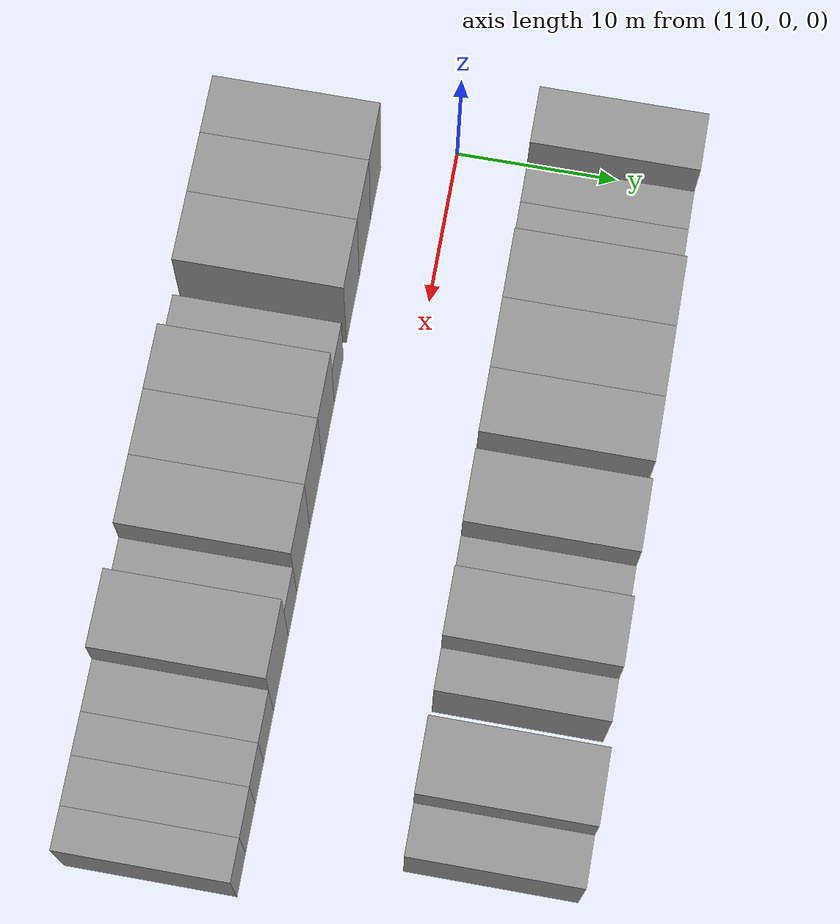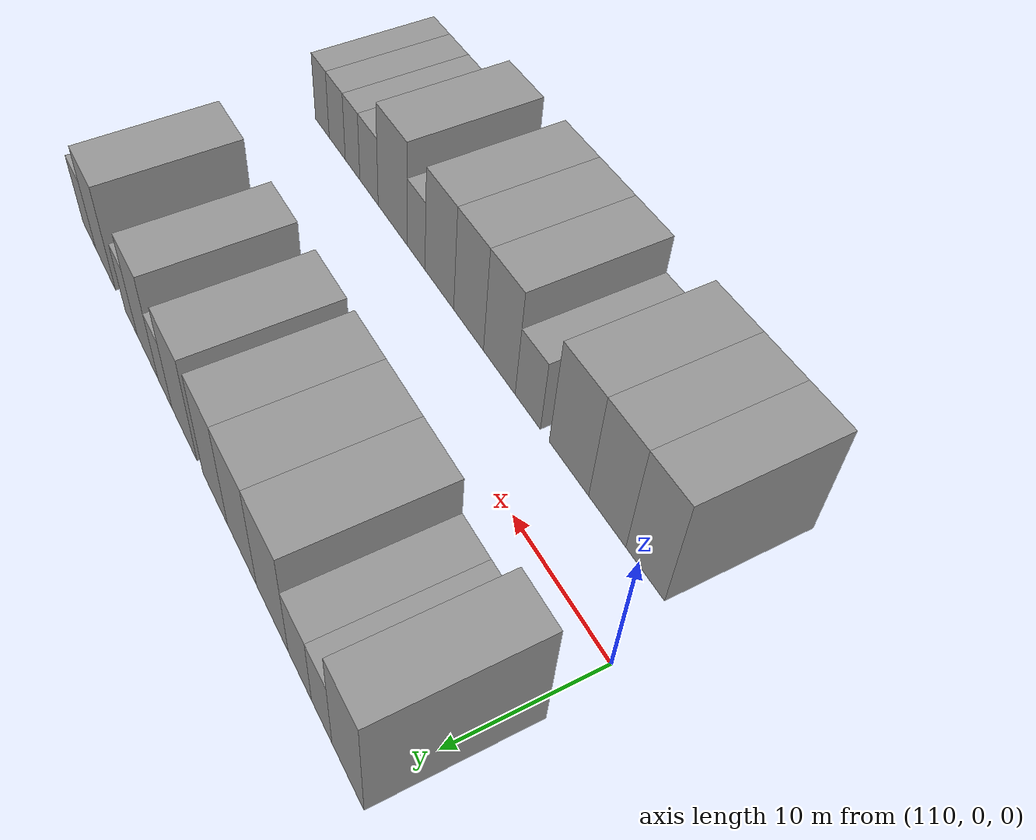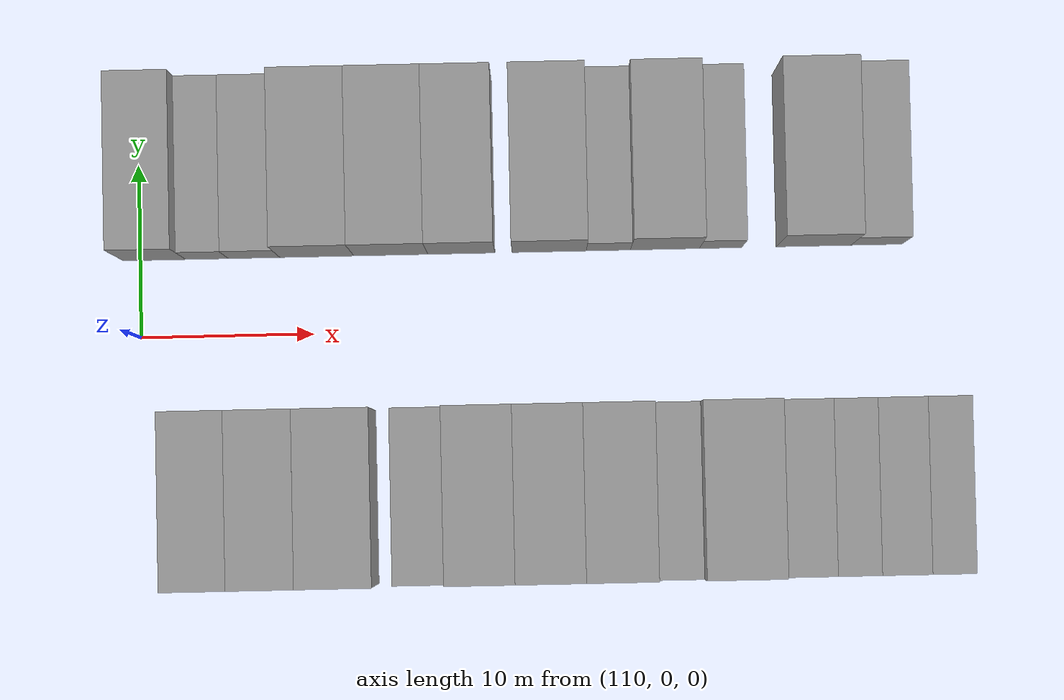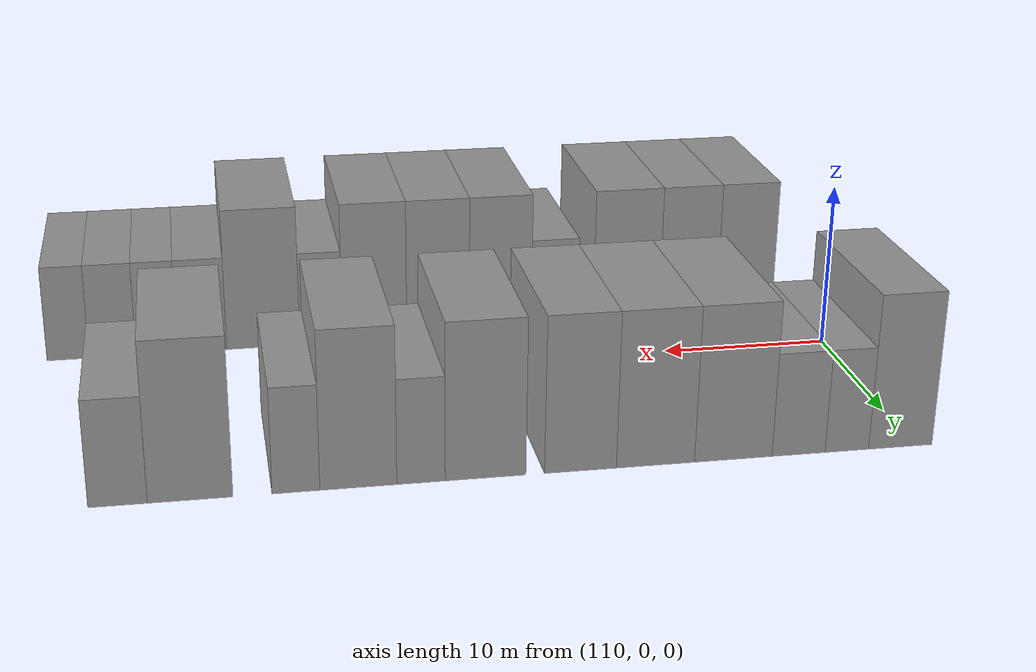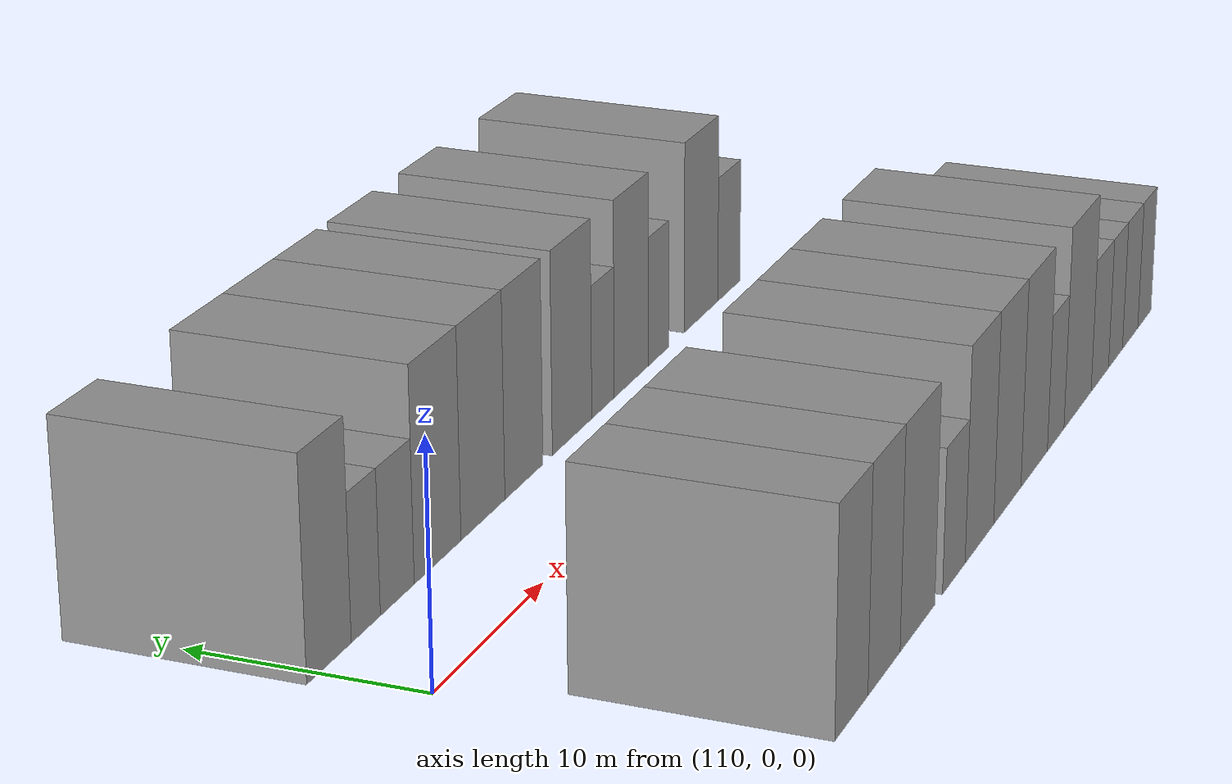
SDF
<sdf version="1.6">
 <world name="default">
  <model name="building_26">
   <static>1</static>
   <pose>110.8466 9.5000 0 0.000000 0.000000 1.570796</pose>
   <link name="link">
    <pose>0 0 4.50 0 0 0</pose>
    <collision name="collision"><geometry><box><size>10.0000 3.6311 9.0000</size></box></geometry></collision>
    <visual name="visual">
     <cast_shadows>0</cast_shadows>
     <geometry><box><size>10.0000 3.6311 9.0000</size></box></geometry>
     <material>
      <script>
       <uri>model://grey_wall/materials/scripts</uri>
       <uri>model://grey_wall/materials/textures</uri>
       <name>vrc/grey_wall</name>
      </script>
     </material>
    </visual>
   </link>
  </model>
  <model name="building_27">
   <static>1</static>
   <pose>113.8942 9.5000 0 0.000000 0.000000 1.570796</pose>
   <link name="link">
    <pose>0 0 3.00 0 0 0</pose>
    <collision name="collision"><geometry><box><size>10.0000 2.4641 6.0000</size></box></geometry></collision>
    <visual name="visual">
     <cast_shadows>0</cast_shadows>
     <geometry><box><size>10.0000 2.4641 6.0000</size></box></geometry>
     <material>
      <script>
       <uri>model://grey_wall/materials/scripts</uri>
       <uri>model://grey_wall/materials/textures</uri>
       <name>vrc/grey_wall</name>
      </script>
     </material>
    </visual>
   </link>
  </model>
  <model name="building_28">
   <static>1</static>
   <pose>116.6158 9.5000 0 0.000000 0.000000 1.570796</pose>
   <link name="link">
    <pose>0 0 3.00 0 0 0</pose>
    <collision name="collision"><geometry><box><size>10.0000 2.9791 6.0000</size></box></geometry></collision>
    <visual name="visual">
     <cast_shadows>0</cast_shadows>
     <geometry><box><size>10.0000 2.9791 6.0000</size></box></geometry>
     <material>
      <script>
       <uri>model://grey_wall/materials/scripts</uri>
       <uri>model://grey_wall/materials/textures</uri>
       <name>vrc/grey_wall</name>
      </script>
     </material>
    </visual>
   </link>
  </model>
  <model name="building_29">
   <static>1</static>
   <pose>120.2576 9.5000 0 0.000000 0.000000 1.570796</pose>
   <link name="link">
    <pose>0 0 4.50 0 0 0</pose>
    <collision name="collision"><geometry><box><size>10.0000 4.3044 9.0000</size></box></geometry></collision>
    <visual name="visual">
     <cast_shadows>0</cast_shadows>
     <geometry><box><size>10.0000 4.3044 9.0000</size></box></geometry>
     <material>
      <script>
       <uri>model://grey_wall/materials/scripts</uri>
       <uri>model://grey_wall/materials/textures</uri>
       <name>vrc/grey_wall</name>
      </script>
     </material>
    </visual>
   </link>
  </model>
  <model name="building_30">
   <static>1</static>
   <pose>124.5517 9.5000 0 0.000000 0.000000 1.570796</pose>
   <link name="link">
    <pose>0 0 4.50 0 0 0</pose>
    <collision name="collision"><geometry><box><size>10.0000 4.2838 9.0000</size></box></geometry></collision>
    <visual name="visual">
     <cast_shadows>0</cast_shadows>
     <geometry><box><size>10.0000 4.2838 9.0000</size></box></geometry>
     <material>
      <script>
       <uri>model://grey_wall/materials/scripts</uri>
       <uri>model://grey_wall/materials/textures</uri>
       <name>vrc/grey_wall</name>
      </script>
     </material>
    </visual>
   </link>
  </model>
  <model name="building_31">
   <static>1</static>
   <pose>128.6397 9.5000 0 0.000000 0.000000 1.570796</pose>
   <link name="link">
    <pose>0 0 4.50 0 0 0</pose>
    <collision name="collision"><geometry><box><size>10.0000 3.8923 9.0000</size></box></geometry></collision>
    <visual name="visual">
     <cast_shadows>0</cast_shadows>
     <geometry><box><size>10.0000 3.8923 9.0000</size></box></geometry>
     <material>
      <script>
       <uri>model://grey_wall/materials/scripts</uri>
       <uri>model://grey_wall/materials/textures</uri>
       <name>vrc/grey_wall</name>
      </script>
     </material>
    </visual>
   </link>
  </model>
  <model name="building_32">
   <static>1</static>
   <pose>133.7341 9.5000 0 0.000000 0.000000 1.570796</pose>
   <link name="link">
    <pose>0 0 4.50 0 0 0</pose>
    <collision name="collision"><geometry><box><size>10.0000 4.2966 9.0000</size></box></geometry></collision>
    <visual name="visual">
     <cast_shadows>0</cast_shadows>
     <geometry><box><size>10.0000 4.2966 9.0000</size></box></geometry>
     <material>
      <script>
       <uri>model://grey_wall/materials/scripts</uri>
       <uri>model://grey_wall/materials/textures</uri>
       <name>vrc/grey_wall</name>
      </script>
     </material>
    </visual>
   </link>
  </model>
  <model name="building_33">
   <static>1</static>
   <pose>137.1597 9.5000 0 0.000000 0.000000 1.570796</pose>
   <link name="link">
    <pose>0 0 3.00 0 0 0</pose>
    <collision name="collision"><geometry><box><size>10.0000 2.5544 6.0000</size></box></geometry></collision>
    <visual name="visual">
     <cast_shadows>0</cast_shadows>
     <geometry><box><size>10.0000 2.5544 6.0000</size></box></geometry>
     <material>
      <script>
       <uri>model://grey_wall/materials/scripts</uri>
       <uri>model://grey_wall/materials/textures</uri>
       <name>vrc/grey_wall</name>
      </script>
     </material>
    </visual>
   </link>
  </model>
  <model name="building_34">
   <static>1</static>
   <pose>140.4432 9.5000 0 0.000000 0.000000 1.570796</pose>
   <link name="link">
    <pose>0 0 4.50 0 0 0</pose>
    <collision name="collision"><geometry><box><size>10.0000 4.0127 9.0000</size></box></geometry></collision>
    <visual name="visual">
     <cast_shadows>0</cast_shadows>
     <geometry><box><size>10.0000 4.0127 9.0000</size></box></geometry>
     <material>
      <script>
       <uri>model://grey_wall/materials/scripts</uri>
       <uri>model://grey_wall/materials/textures</uri>
       <name>vrc/grey_wall</name>
      </script>
     </material>
    </visual>
   </link>
  </model>
  <model name="building_35">
   <static>1</static>
   <pose>143.6818 9.5000 0 0.000000 0.000000 1.570796</pose>
   <link name="link">
    <pose>0 0 3.00 0 0 0</pose>
    <collision name="collision"><geometry><box><size>10.0000 2.4644 6.0000</size></box></geometry></collision>
    <visual name="visual">
     <cast_shadows>0</cast_shadows>
     <geometry><box><size>10.0000 2.4644 6.0000</size></box></geometry>
     <material>
      <script>
       <uri>model://grey_wall/materials/scripts</uri>
       <uri>model://grey_wall/materials/textures</uri>
       <name>vrc/grey_wall</name>
      </script>
     </material>
    </visual>
   </link>
  </model>
  <model name="building_36">
   <static>1</static>
   <pose>149.0843 9.5000 0 0.000000 0.000000 1.570796</pose>
   <link name="link">
    <pose>0 0 4.50 0 0 0</pose>
    <collision name="collision"><geometry><box><size>10.0000 4.3407 9.0000</size></box></geometry></collision>
    <visual name="visual">
     <cast_shadows>0</cast_shadows>
     <geometry><box><size>10.0000 4.3407 9.0000</size></box></geometry>
     <material>
      <script>
       <uri>model://grey_wall/materials/scripts</uri>
       <uri>model://grey_wall/materials/textures</uri>
       <name>vrc/grey_wall</name>
      </script>
     </material>
    </visual>
   </link>
  </model>
  <model name="building_37">
   <static>1</static>
   <pose>152.7458 9.5000 0 0.000000 0.000000 1.570796</pose>
   <link name="link">
    <pose>0 0 3.00 0 0 0</pose>
    <collision name="collision"><geometry><box><size>10.0000 2.9823 6.0000</size></box></geometry></collision>
    <visual name="visual">
     <cast_shadows>0</cast_shadows>
     <geometry><box><size>10.0000 2.9823 6.0000</size></box></geometry>
     <material>
      <script>
       <uri>model://grey_wall/materials/scripts</uri>
       <uri>model://grey_wall/materials/textures</uri>
       <name>vrc/grey_wall</name>
      </script>
     </material>
    </visual>
   </link>
  </model>
  <model name="building_75">
   <static>1</static>
   <pose>113.5750 -9.5000 0 0.000000 0.000000 1.570796</pose>
   <link name="link">
    <pose>0 0 4.50 0 0 0</pose>
    <collision name="collision"><geometry><box><size>10.0000 3.6935 9.0000</size></box></geometry></collision>
    <visual name="visual">
     <cast_shadows>0</cast_shadows>
     <geometry><box><size>10.0000 3.6935 9.0000</size></box></geometry>
     <material>
      <script>
       <uri>model://grey_wall/materials/scripts</uri>
       <uri>model://grey_wall/materials/textures</uri>
       <name>vrc/grey_wall</name>
      </script>
     </material>
    </visual>
   </link>
  </model>
  <model name="building_76">
   <static>1</static>
   <pose>117.3098 -9.5000 0 0.000000 0.000000 1.570796</pose>
   <link name="link">
    <pose>0 0 4.50 0 0 0</pose>
    <collision name="collision"><geometry><box><size>10.0000 3.7762 9.0000</size></box></geometry></collision>
    <visual name="visual">
     <cast_shadows>0</cast_shadows>
     <geometry><box><size>10.0000 3.7762 9.0000</size></box></geometry>
     <material>
      <script>
       <uri>model://grey_wall/materials/scripts</uri>
       <uri>model://grey_wall/materials/textures</uri>
       <name>vrc/grey_wall</name>
      </script>
     </material>
    </visual>
   </link>
  </model>
  <model name="building_77">
   <static>1</static>
   <pose>121.3469 -9.5000 0 0.000000 0.000000 1.570796</pose>
   <link name="link">
    <pose>0 0 4.50 0 0 0</pose>
    <collision name="collision"><geometry><box><size>10.0000 4.2979 9.0000</size></box></geometry></collision>
    <visual name="visual">
     <cast_shadows>0</cast_shadows>
     <geometry><box><size>10.0000 4.2979 9.0000</size></box></geometry>
     <material>
      <script>
       <uri>model://grey_wall/materials/scripts</uri>
       <uri>model://grey_wall/materials/textures</uri>
       <name>vrc/grey_wall</name>
      </script>
     </material>
    </visual>
   </link>
  </model>
  <model name="building_78">
   <static>1</static>
   <pose>125.9862 -9.5000 0 0.000000 0.000000 1.570796</pose>
   <link name="link">
    <pose>0 0 3.00 0 0 0</pose>
    <collision name="collision"><geometry><box><size>10.0000 2.9807 6.0000</size></box></geometry></collision>
    <visual name="visual">
     <cast_shadows>0</cast_shadows>
     <geometry><box><size>10.0000 2.9807 6.0000</size></box></geometry>
     <material>
      <script>
       <uri>model://grey_wall/materials/scripts</uri>
       <uri>model://grey_wall/materials/textures</uri>
       <name>vrc/grey_wall</name>
      </script>
     </material>
    </visual>
   </link>
  </model>
  <model name="building_79">
   <static>1</static>
   <pose>129.4484 -9.5000 0 0.000000 0.000000 1.570796</pose>
   <link name="link">
    <pose>0 0 4.50 0 0 0</pose>
    <collision name="collision"><geometry><box><size>10.0000 3.9437 9.0000</size></box></geometry></collision>
    <visual name="visual">
     <cast_shadows>0</cast_shadows>
     <geometry><box><size>10.0000 3.9437 9.0000</size></box></geometry>
     <material>
      <script>
       <uri>model://grey_wall/materials/scripts</uri>
       <uri>model://grey_wall/materials/textures</uri>
       <name>vrc/grey_wall</name>
      </script>
     </material>
    </visual>
   </link>
  </model>
  <model name="building_80">
   <static>1</static>
   <pose>133.3922 -9.5000 0 0.000000 0.000000 1.570796</pose>
   <link name="link">
    <pose>0 0 4.50 0 0 0</pose>
    <collision name="collision"><geometry><box><size>10.0000 3.9440 9.0000</size></box></geometry></collision>
    <visual name="visual">
     <cast_shadows>0</cast_shadows>
     <geometry><box><size>10.0000 3.9440 9.0000</size></box></geometry>
     <material>
      <script>
       <uri>model://grey_wall/materials/scripts</uri>
       <uri>model://grey_wall/materials/textures</uri>
       <name>vrc/grey_wall</name>
      </script>
     </material>
    </visual>
   </link>
  </model>
  <model name="building_81">
   <static>1</static>
   <pose>137.3812 -9.5000 0 0.000000 0.000000 1.570796</pose>
   <link name="link">
    <pose>0 0 4.50 0 0 0</pose>
    <collision name="collision"><geometry><box><size>10.0000 4.0340 9.0000</size></box></geometry></collision>
    <visual name="visual">
     <cast_shadows>0</cast_shadows>
     <geometry><box><size>10.0000 4.0340 9.0000</size></box></geometry>
     <material>
      <script>
       <uri>model://grey_wall/materials/scripts</uri>
       <uri>model://grey_wall/materials/textures</uri>
       <name>vrc/grey_wall</name>
      </script>
     </material>
    </visual>
   </link>
  </model>
  <model name="building_82">
   <static>1</static>
   <pose>140.7132 -9.5000 0 0.000000 0.000000 1.570796</pose>
   <link name="link">
    <pose>0 0 3.00 0 0 0</pose>
    <collision name="collision"><geometry><box><size>10.0000 2.6299 6.0000</size></box></geometry></collision>
    <visual name="visual">
     <cast_shadows>0</cast_shadows>
     <geometry><box><size>10.0000 2.6299 6.0000</size></box></geometry>
     <material>
      <script>
       <uri>model://grey_wall/materials/scripts</uri>
       <uri>model://grey_wall/materials/textures</uri>
       <name>vrc/grey_wall</name>
      </script>
     </material>
    </visual>
   </link>
  </model>
  <model name="building_83">
   <static>1</static>
   <pose>144.2754 -9.5000 0 0.000000 0.000000 1.570796</pose>
   <link name="link">
    <pose>0 0 4.50 0 0 0</pose>
    <collision name="collision"><geometry><box><size>10.0000 4.4945 9.0000</size></box></geometry></collision>
    <visual name="visual">
     <cast_shadows>0</cast_shadows>
     <geometry><box><size>10.0000 4.4945 9.0000</size></box></geometry>
     <material>
      <script>
       <uri>model://grey_wall/materials/scripts</uri>
       <uri>model://grey_wall/materials/textures</uri>
       <name>vrc/grey_wall</name>
      </script>
     </material>
    </visual>
   </link>
  </model>
  <model name="building_84">
   <static>1</static>
   <pose>148.0215 -9.5000 0 0.000000 0.000000 1.570796</pose>
   <link name="link">
    <pose>0 0 3.00 0 0 0</pose>
    <collision name="collision"><geometry><box><size>10.0000 2.9979 6.0000</size></box></geometry></collision>
    <visual name="visual">
     <cast_shadows>0</cast_shadows>
     <geometry><box><size>10.0000 2.9979 6.0000</size></box></geometry>
     <material>
      <script>
       <uri>model://grey_wall/materials/scripts</uri>
       <uri>model://grey_wall/materials/textures</uri>
       <name>vrc/grey_wall</name>
      </script>
     </material>
    </visual>
   </link>
  </model>
  <model name="building_85">
   <static>1</static>
   <pose>150.7612 -9.5000 0 0.000000 0.000000 1.570796</pose>
   <link name="link">
    <pose>0 0 3.00 0 0 0</pose>
    <collision name="collision"><geometry><box><size>10.0000 2.4815 6.0000</size></box></geometry></collision>
    <visual name="visual">
     <cast_shadows>0</cast_shadows>
     <geometry><box><size>10.0000 2.4815 6.0000</size></box></geometry>
     <material>
      <script>
       <uri>model://grey_wall/materials/scripts</uri>
       <uri>model://grey_wall/materials/textures</uri>
       <name>vrc/grey_wall</name>
      </script>
     </material>
    </visual>
   </link>
  </model>
  <model name="building_86">
   <static>1</static>
   <pose>153.4127 -9.5000 0 0.000000 0.000000 1.570796</pose>
   <link name="link">
    <pose>0 0 3.00 0 0 0</pose>
    <collision name="collision"><geometry><box><size>10.0000 2.8215 6.0000</size></box></geometry></collision>
    <visual name="visual">
     <cast_shadows>0</cast_shadows>
     <geometry><box><size>10.0000 2.8215 6.0000</size></box></geometry>
     <material>
      <script>
       <uri>model://grey_wall/materials/scripts</uri>
       <uri>model://grey_wall/materials/textures</uri>
       <name>vrc/grey_wall</name>
      </script>
     </material>
    </visual>
   </link>
  </model>
  <model name="building_87">
   <static>1</static>
   <pose>156.0691 -9.5000 0 0.000000 0.000000 1.570796</pose>
   <link name="link">
    <pose>0 0 3.00 0 0 0</pose>
    <collision name="collision"><geometry><box><size>10.0000 2.4912 6.0000</size></box></geometry></collision>
    <visual name="visual">
     <cast_shadows>0</cast_shadows>
     <geometry><box><size>10.0000 2.4912 6.0000</size></box></geometry>
     <material>
      <script>
       <uri>model://grey_wall/materials/scripts</uri>
       <uri>model://grey_wall/materials/textures</uri>
       <name>vrc/grey_wall</name>
      </script>
     </material>
    </visual>
   </link>
  </model>
 </world>
</sdf>
